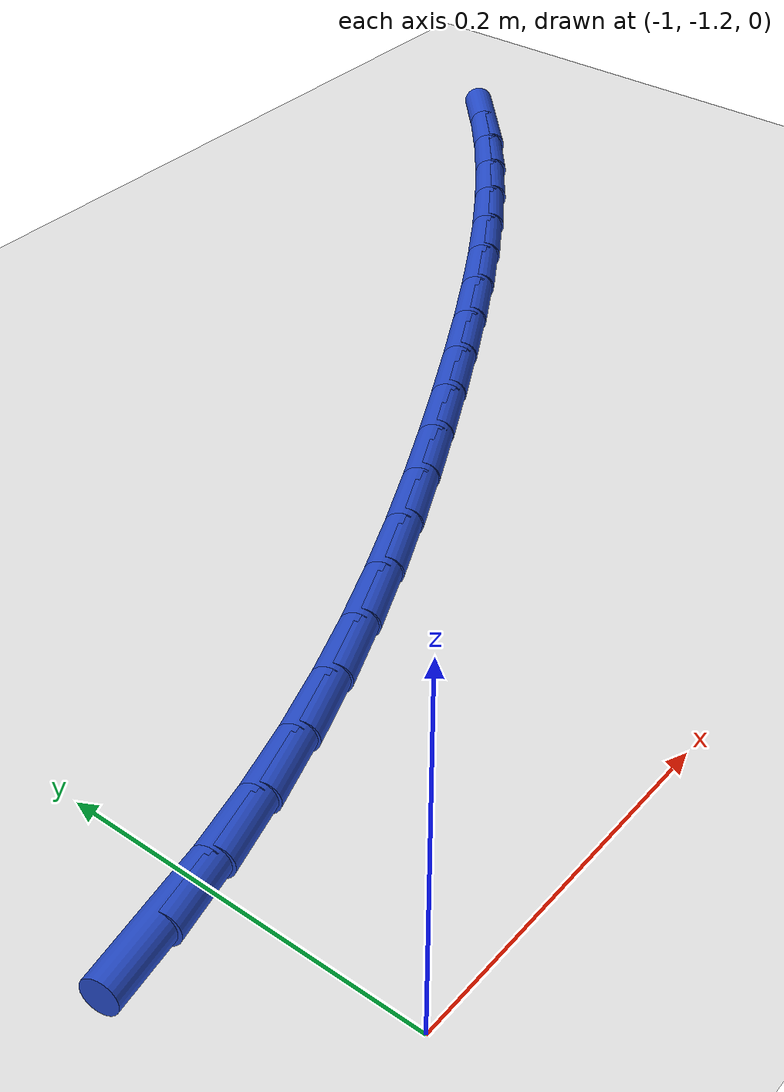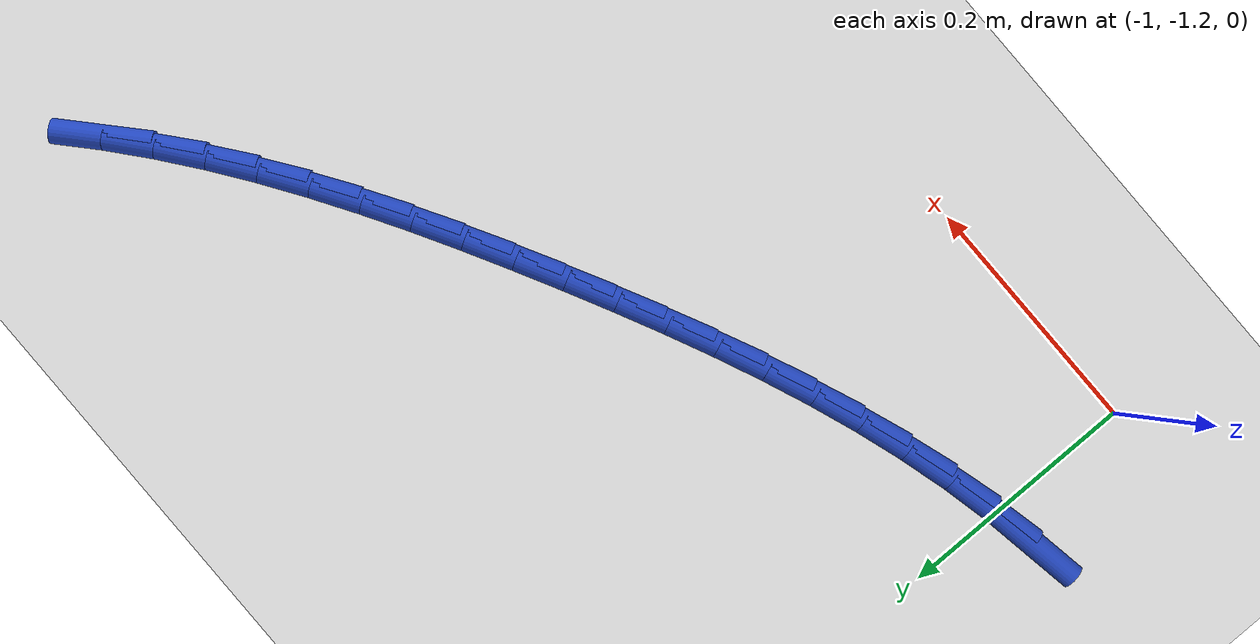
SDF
<sdf version="1.6">
 <world name="default">
  <model name="ground_plane">
   <static>1</static>
   <link name="link">
    <collision name="collision">
     <geometry><plane><normal>0 0 1</normal><size>100 100</size></plane></geometry>
     <surface><friction><ode><mu>100</mu><mu2>50</mu2></ode></friction></surface>
    </collision>
    <visual name="visual">
     <cast_shadows>0</cast_shadows>
     <geometry><plane><normal>0 0 1</normal><size>100 100</size></plane></geometry>
     <material>
      <script><uri>file://media/materials/scripts/gazebo.material</uri><name>Gazebo/WhiteGlow</name></script>
     </material>
    </visual>
   </link>
  </model>
  <model name="line">
   <link name="link_121">
    <pose>-1.0343637234994627 -1.0848973829245232 0.01 0 1.57 0.16821744553600834</pose>
    <collision name="collision">
     <geometry><cylinder><radius>0.01</radius><length>0.08</length></cylinder></geometry>
    </collision>
    <visual name="visual">
     <material>
      <script><name>Gazebo/Blue</name><uri>file://media/materials/scripts/gazebo.material</uri></script>
     </material>
     <geometry><cylinder><radius>0.01</radius><length>0.08</length></cylinder></geometry>
    </visual>
   </link>
   <link name="link_122">
    <pose>-0.9941390779498182 -1.0780663410105542 0.01 0 1.57 0.22253083922380373</pose>
    <collision name="collision">
     <geometry><cylinder><radius>0.01</radius><length>0.08</length></cylinder></geometry>
    </collision>
    <visual name="visual">
     <material>
      <script><name>Gazebo/Blue</name><uri>file://media/materials/scripts/gazebo.material</uri></script>
     </material>
     <geometry><cylinder><radius>0.01</radius><length>0.08</length></cylinder></geometry>
    </visual>
   </link>
   <link name="link_123">
    <pose>-0.9540794653439766 -1.0690017188712932 0.01 0 1.57 0.27121889659743104</pose>
    <collision name="collision">
     <geometry><cylinder><radius>0.01</radius><length>0.08</length></cylinder></geometry>
    </collision>
    <visual name="visual">
     <material>
      <script><name>Gazebo/Blue</name><uri>file://media/materials/scripts/gazebo.material</uri></script>
     </material>
     <geometry><cylinder><radius>0.01</radius><length>0.08</length></cylinder></geometry>
    </visual>
   </link>
   <link name="link_124">
    <pose>-0.9142074680876151 -1.0579144792048578 0.01 0 1.57 0.3144327854229267</pose>
    <collision name="collision">
     <geometry><cylinder><radius>0.01</radius><length>0.08</length></cylinder></geometry>
    </collision>
    <visual name="visual">
     <material>
      <script><name>Gazebo/Blue</name><uri>file://media/materials/scripts/gazebo.material</uri></script>
     </material>
     <geometry><cylinder><radius>0.01</radius><length>0.08</length></cylinder></geometry>
    </visual>
   </link>
   <link name="link_125">
    <pose>-0.8745456685864124 -1.0450155847093665 0.01 0 1.57 0.3523896820892841</pose>
    <collision name="collision">
     <geometry><cylinder><radius>0.01</radius><length>0.08</length></cylinder></geometry>
    </collision>
    <visual name="visual">
     <material>
      <script><name>Gazebo/Blue</name><uri>file://media/materials/scripts/gazebo.material</uri></script>
     </material>
     <geometry><cylinder><radius>0.01</radius><length>0.08</length></cylinder></geometry>
    </visual>
   </link>
   <link name="link_126">
    <pose>-0.8351166492460466 -1.0305159980829375 0.01 0 1.57 0.3853351629530569</pose>
    <collision name="collision">
     <geometry><cylinder><radius>0.01</radius><length>0.08</length></cylinder></geometry>
    </collision>
    <visual name="visual">
     <material>
      <script><name>Gazebo/Blue</name><uri>file://media/materials/scripts/gazebo.material</uri></script>
     </material>
     <geometry><cylinder><radius>0.01</radius><length>0.08</length></cylinder></geometry>
    </visual>
   </link>
   <link name="link_127">
    <pose>-0.7959429924721966 -1.0146266820236889 0.01 0 1.57 0.41351496162591994</pose>
    <collision name="collision">
     <geometry><cylinder><radius>0.01</radius><length>0.08</length></cylinder></geometry>
    </collision>
    <visual name="visual">
     <material>
      <script><name>Gazebo/Blue</name><uri>file://media/materials/scripts/gazebo.material</uri></script>
     </material>
     <geometry><cylinder><radius>0.01</radius><length>0.08</length></cylinder></geometry>
    </visual>
   </link>
   <link name="link_128">
    <pose>-0.7570472806705407 -0.9975585992297398 0.01 0 1.57 0.4371547017151191</pose>
    <collision name="collision">
     <geometry><cylinder><radius>0.01</radius><length>0.08</length></cylinder></geometry>
    </collision>
    <visual name="visual">
     <material>
      <script><name>Gazebo/Blue</name><uri>file://media/materials/scripts/gazebo.material</uri></script>
     </material>
     <geometry><cylinder><radius>0.01</radius><length>0.08</length></cylinder></geometry>
    </visual>
   </link>
   <link name="link_129">
    <pose>-0.7184520962467569 -0.9795227123992075 0.01 0 1.57 0.45644571137683154</pose>
    <collision name="collision">
     <geometry><cylinder><radius>0.01</radius><length>0.08</length></cylinder></geometry>
    </collision>
    <visual name="visual">
     <material>
      <script><name>Gazebo/Blue</name><uri>file://media/materials/scripts/gazebo.material</uri></script>
     </material>
     <geometry><cylinder><radius>0.01</radius><length>0.08</length></cylinder></geometry>
    </visual>
   </link>
   <link name="link_130">
    <pose>-0.6801800216065235 -0.9607299842302112 0.01 0 1.57 0.4715350423257058</pose>
    <collision name="collision">
     <geometry><cylinder><radius>0.01</radius><length>0.08</length></cylinder></geometry>
    </collision>
    <visual name="visual">
     <material>
      <script><name>Gazebo/Blue</name><uri>file://media/materials/scripts/gazebo.material</uri></script>
     </material>
     <geometry><cylinder><radius>0.01</radius><length>0.08</length></cylinder></geometry>
    </visual>
   </link>
   <link name="link_131">
    <pose>-0.6422536391555184 -0.9413913774208682 0.01 0 1.57 0.4832379091195086</pose>
    <collision name="collision">
     <geometry><cylinder><radius>0.01</radius><length>0.08</length></cylinder></geometry>
    </collision>
    <visual name="visual">
     <material>
      <script><name>Gazebo/Blue</name><uri>file://media/materials/scripts/gazebo.material</uri></script>
     </material>
     <geometry><cylinder><radius>0.01</radius><length>0.08</length></cylinder></geometry>
    </visual>
   </link>
   <link name="link_132">
    <pose>-0.6047017368880494 -0.9216866436080411 0.01 0 1.57 0.49653718225683824</pose>
    <collision name="collision">
     <geometry><cylinder><radius>0.01</radius><length>0.08</length></cylinder></geometry>
    </collision>
    <visual name="visual">
     <material>
      <script><name>Gazebo/Blue</name><uri>file://media/materials/scripts/gazebo.material</uri></script>
     </material>
     <geometry><cylinder><radius>0.01</radius><length>0.08</length></cylinder></geometry>
    </visual>
   </link>
   <link name="link_133">
    <pose>-0.5675955641748598 -0.9015819745714387 0.01 0 1.57 0.5135602246540227</pose>
    <collision name="collision">
     <geometry><cylinder><radius>0.01</radius><length>0.08</length></cylinder></geometry>
    </collision>
    <visual name="visual">
     <material>
      <script><name>Gazebo/Blue</name><uri>file://media/materials/scripts/gazebo.material</uri></script>
     </material>
     <geometry><cylinder><radius>0.01</radius><length>0.08</length></cylinder></geometry>
    </visual>
   </link>
   <link name="link_134">
    <pose>-0.531024147561892 -0.8809541516355612 0.01 0 1.57 0.5343831933997436</pose>
    <collision name="collision">
     <geometry><cylinder><radius>0.01</radius><length>0.08</length></cylinder></geometry>
    </collision>
    <visual name="visual">
     <material>
      <script><name>Gazebo/Blue</name><uri>file://media/materials/scripts/gazebo.material</uri></script>
     </material>
     <geometry><cylinder><radius>0.01</radius><length>0.08</length></cylinder></geometry>
    </visual>
   </link>
   <link name="link_135">
    <pose>-0.4950765738261064 -0.8596796531924876 0.01 0 1.57 0.5590694600702333</pose>
    <collision name="collision">
     <geometry><cylinder><radius>0.01</radius><length>0.08</length></cylinder></geometry>
    </collision>
    <visual name="visual">
     <material>
      <script><name>Gazebo/Blue</name><uri>file://media/materials/scripts/gazebo.material</uri></script>
     </material>
     <geometry><cylinder><radius>0.01</radius><length>0.08</length></cylinder></geometry>
    </visual>
   </link>
   <link name="link_136">
    <pose>-0.459841929744463 -0.8376349576342967 0.01 0 1.57 0.5876673425974096</pose>
    <collision name="collision">
     <geometry><cylinder><radius>0.01</radius><length>0.08</length></cylinder></geometry>
    </collision>
    <visual name="visual">
     <material>
      <script><name>Gazebo/Blue</name><uri>file://media/materials/scripts/gazebo.material</uri></script>
     </material>
     <geometry><cylinder><radius>0.01</radius><length>0.08</length></cylinder></geometry>
    </visual>
   </link>
   <link name="link_137">
    <pose>-0.4254093020939232 -0.8146965433530687 0.01 0 1.57 0.6201986075080994</pose>
    <collision name="collision">
     <geometry><cylinder><radius>0.01</radius><length>0.08</length></cylinder></geometry>
    </collision>
    <visual name="visual">
     <material>
      <script><name>Gazebo/Blue</name><uri>file://media/materials/scripts/gazebo.material</uri></script>
     </material>
     <geometry><cylinder><radius>0.01</radius><length>0.08</length></cylinder></geometry>
    </visual>
   </link>
   <link name="link_138">
    <pose>-0.3918677776514466 -0.7907408887408823 0.01 0 1.57 0.6566449172573866</pose>
    <collision name="collision">
     <geometry><cylinder><radius>0.01</radius><length>0.08</length></cylinder></geometry>
    </collision>
    <visual name="visual">
     <material>
      <script><name>Gazebo/Blue</name><uri>file://media/materials/scripts/gazebo.material</uri></script>
     </material>
     <geometry><cylinder><radius>0.01</radius><length>0.08</length></cylinder></geometry>
    </visual>
   </link>
   <link name="link_139">
    <pose>-0.359306443193994 -0.7656444721898168 0.01 0 1.57 0.696932814463614</pose>
    <collision name="collision">
     <geometry><cylinder><radius>0.01</radius><length>0.08</length></cylinder></geometry>
    </collision>
    <visual name="visual">
     <material>
      <script><name>Gazebo/Blue</name><uri>file://media/materials/scripts/gazebo.material</uri></script>
     </material>
     <geometry><cylinder><radius>0.01</radius><length>0.08</length></cylinder></geometry>
    </visual>
   </link>
   <link name="link_140">
    <pose>-0.3278143854985256 -0.7392837720919516 0.01 0 1.57 0.7409183775912351</pose>
    <collision name="collision">
     <geometry><cylinder><radius>0.01</radius><length>0.08</length></cylinder></geometry>
    </collision>
    <visual name="visual">
     <material>
      <script><name>Gazebo/Blue</name><uri>file://media/materials/scripts/gazebo.material</uri></script>
     </material>
     <geometry><cylinder><radius>0.01</radius><length>0.08</length></cylinder></geometry>
    </visual>
   </link>
  </model>
 </world>
</sdf>
